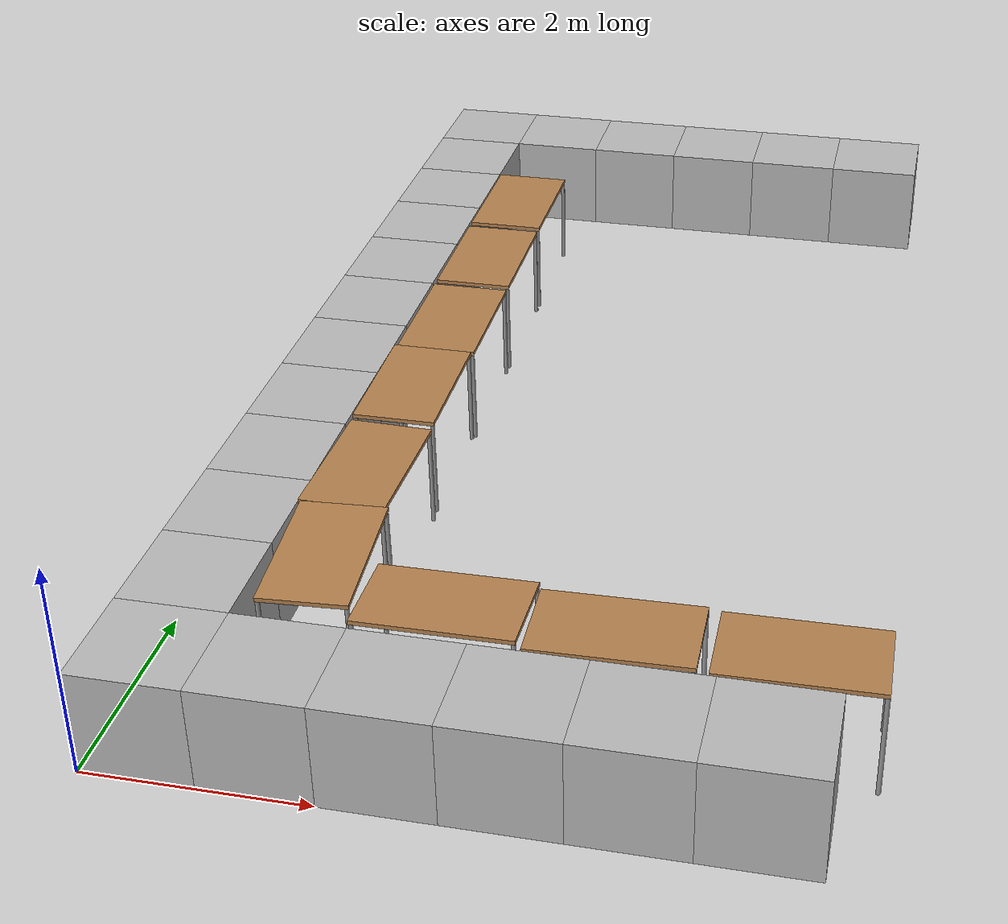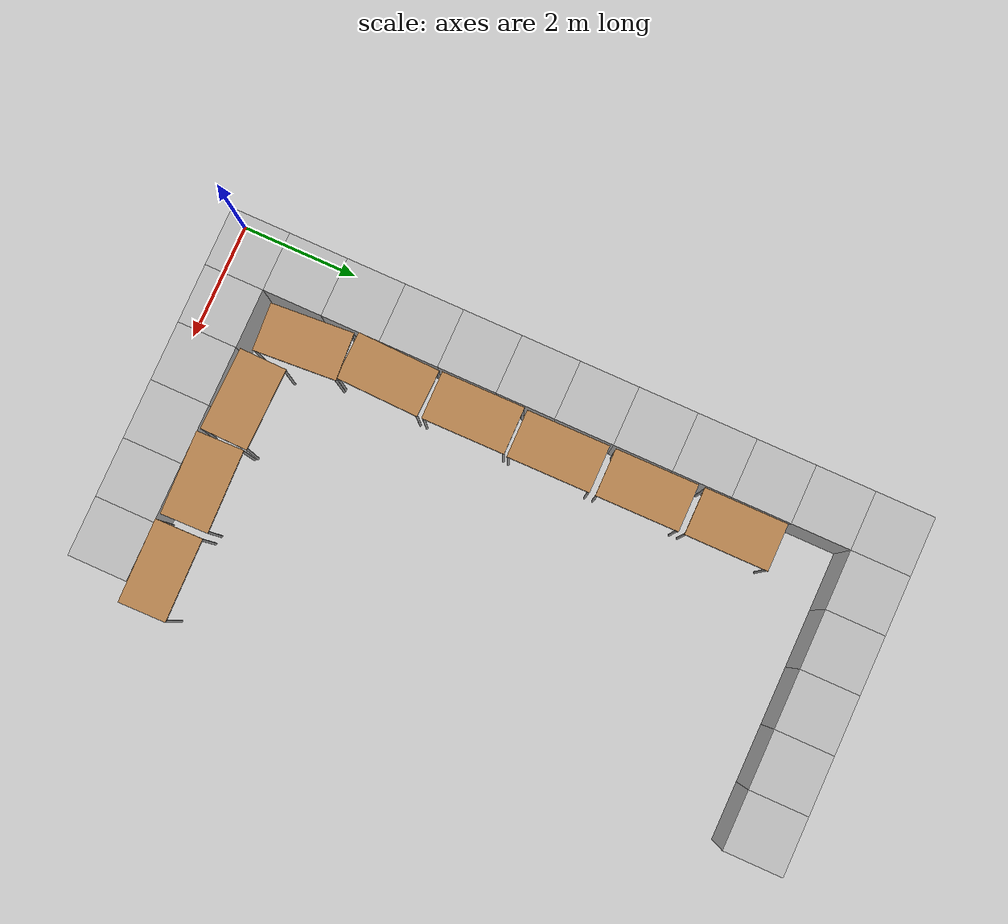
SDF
<sdf version="1.6">
 <world name="default">
  <model name="box_0_0">
   <pose>0.5 0.5 0.5 0 -0 0</pose>
   <static>1</static>
   <link name="link">
    <collision name="collision"><geometry><box><size>1 1 1</size></box></geometry></collision>
    <visual name="visual"><geometry><box><size>1 1 1</size></box></geometry></visual>
   </link>
  </model>
  <model name="box_0_1">
   <pose>0.5 1.5 0.5 0 -0 0</pose>
   <static>1</static>
   <link name="link">
    <collision name="collision"><geometry><box><size>1 1 1</size></box></geometry></collision>
    <visual name="visual"><geometry><box><size>1 1 1</size></box></geometry></visual>
   </link>
  </model>
  <model name="box_0_2">
   <pose>0.5 2.5 0.5 0 -0 0</pose>
   <static>1</static>
   <link name="link">
    <collision name="collision"><geometry><box><size>1 1 1</size></box></geometry></collision>
    <visual name="visual"><geometry><box><size>1 1 1</size></box></geometry></visual>
   </link>
  </model>
  <model name="box_0_3">
   <pose>0.5 3.5 0.5 0 -0 0</pose>
   <static>1</static>
   <link name="link">
    <collision name="collision"><geometry><box><size>1 1 1</size></box></geometry></collision>
    <visual name="visual"><geometry><box><size>1 1 1</size></box></geometry></visual>
   </link>
  </model>
  <model name="box_0_4">
   <pose>0.5 4.5 0.5 0 -0 0</pose>
   <static>1</static>
   <link name="link">
    <collision name="collision"><geometry><box><size>1 1 1</size></box></geometry></collision>
    <visual name="visual"><geometry><box><size>1 1 1</size></box></geometry></visual>
   </link>
  </model>
  <model name="box_0_5">
   <pose>0.5 5.5 0.5 0 -0 0</pose>
   <static>1</static>
   <link name="link">
    <collision name="collision"><geometry><box><size>1 1 1</size></box></geometry></collision>
    <visual name="visual"><geometry><box><size>1 1 1</size></box></geometry></visual>
   </link>
  </model>
  <model name="box_0_6">
   <pose>0.5 6.5 0.5 0 -0 0</pose>
   <static>1</static>
   <link name="link">
    <collision name="collision"><geometry><box><size>1 1 1</size></box></geometry></collision>
    <visual name="visual"><geometry><box><size>1 1 1</size></box></geometry></visual>
   </link>
  </model>
  <model name="box_0_7">
   <pose>0.5 7.5 0.5 0 -0 0</pose>
   <static>1</static>
   <link name="link">
    <collision name="collision"><geometry><box><size>1 1 1</size></box></geometry></collision>
    <visual name="visual"><geometry><box><size>1 1 1</size></box></geometry></visual>
   </link>
  </model>
  <model name="box_0_8">
   <pose>0.5 8.5 0.5 0 -0 0</pose>
   <static>1</static>
   <link name="link">
    <collision name="collision"><geometry><box><size>1 1 1</size></box></geometry></collision>
    <visual name="visual"><geometry><box><size>1 1 1</size></box></geometry></visual>
   </link>
  </model>
  <model name="box_0_9">
   <pose>0.5 9.5 0.5 0 -0 0</pose>
   <static>1</static>
   <link name="link">
    <collision name="collision"><geometry><box><size>1 1 1</size></box></geometry></collision>
    <visual name="visual"><geometry><box><size>1 1 1</size></box></geometry></visual>
   </link>
  </model>
  <model name="box_0_10">
   <pose>0.5 10.5 0.5 0 -0 0</pose>
   <static>1</static>
   <link name="link">
    <collision name="collision"><geometry><box><size>1 1 1</size></box></geometry></collision>
    <visual name="visual"><geometry><box><size>1 1 1</size></box></geometry></visual>
   </link>
  </model>
  <model name="box_0_11">
   <pose>0.5 11.5 0.5 0 -0 0</pose>
   <static>1</static>
   <link name="link">
    <collision name="collision"><geometry><box><size>1 1 1</size></box></geometry></collision>
    <visual name="visual"><geometry><box><size>1 1 1</size></box></geometry></visual>
   </link>
  </model>
  <model name="box_1_0">
   <pose>1.5 0.5 0.5 0 -0 0</pose>
   <static>1</static>
   <link name="link">
    <collision name="collision"><geometry><box><size>1 1 1</size></box></geometry></collision>
    <visual name="visual"><geometry><box><size>1 1 1</size></box></geometry></visual>
   </link>
  </model>
  <model name="box_1_11">
   <pose>1.5 11.5 0.5 0 -0 0</pose>
   <static>1</static>
   <link name="link">
    <collision name="collision"><geometry><box><size>1 1 1</size></box></geometry></collision>
    <visual name="visual"><geometry><box><size>1 1 1</size></box></geometry></visual>
   </link>
  </model>
  <model name="box_2_0">
   <pose>2.5 0.5 0.5 0 -0 0</pose>
   <static>1</static>
   <link name="link">
    <collision name="collision"><geometry><box><size>1 1 1</size></box></geometry></collision>
    <visual name="visual"><geometry><box><size>1 1 1</size></box></geometry></visual>
   </link>
  </model>
  <model name="box_2_11">
   <pose>2.5 11.5 0.5 0 -0 0</pose>
   <static>1</static>
   <link name="link">
    <collision name="collision"><geometry><box><size>1 1 1</size></box></geometry></collision>
    <visual name="visual"><geometry><box><size>1 1 1</size></box></geometry></visual>
   </link>
  </model>
  <model name="box_3_0">
   <pose>3.5 0.5 0.5 0 -0 0</pose>
   <static>1</static>
   <link name="link">
    <collision name="collision"><geometry><box><size>1 1 1</size></box></geometry></collision>
    <visual name="visual"><geometry><box><size>1 1 1</size></box></geometry></visual>
   </link>
  </model>
  <model name="box_3_11">
   <pose>3.5 11.5 0.5 0 -0 0</pose>
   <static>1</static>
   <link name="link">
    <collision name="collision"><geometry><box><size>1 1 1</size></box></geometry></collision>
    <visual name="visual"><geometry><box><size>1 1 1</size></box></geometry></visual>
   </link>
  </model>
  <model name="box_4_0">
   <pose>4.5 0.5 0.5 0 -0 0</pose>
   <static>1</static>
   <link name="link">
    <collision name="collision"><geometry><box><size>1 1 1</size></box></geometry></collision>
    <visual name="visual"><geometry><box><size>1 1 1</size></box></geometry></visual>
   </link>
  </model>
  <model name="box_4_11">
   <pose>4.5 11.5 0.5 0 -0 0</pose>
   <static>1</static>
   <link name="link">
    <collision name="collision"><geometry><box><size>1 1 1</size></box></geometry></collision>
    <visual name="visual"><geometry><box><size>1 1 1</size></box></geometry></visual>
   </link>
  </model>
  <model name="box_5_0">
   <pose>5.5 0.5 0.5 0 -0 0</pose>
   <static>1</static>
   <link name="link">
    <collision name="collision"><geometry><box><size>1 1 1</size></box></geometry></collision>
    <visual name="visual"><geometry><box><size>1 1 1</size></box></geometry></visual>
   </link>
  </model>
  <model name="box_5_11">
   <pose>5.5 11.5 0.5 0 -0 0</pose>
   <static>1</static>
   <link name="link">
    <collision name="collision"><geometry><box><size>1 1 1</size></box></geometry></collision>
    <visual name="visual"><geometry><box><size>1 1 1</size></box></geometry></visual>
   </link>
  </model>
  <model name="table_0_clone_clone_1">
   <static>0</static>
   <link name="link">
    <collision name="surface">
     <pose>0 0 1 0 -0 0</pose>
     <geometry><box><size>1.5 0.8 0.03</size></box></geometry>
     <surface><friction><ode><mu>0.6</mu><mu2>0.6</mu2></ode></friction></surface>
    </collision>
    <visual name="visual1">
     <pose>0 0 1 0 -0 0</pose>
     <geometry><box><size>1.4 0.8 0.04</size></box></geometry>
     <material>
      <script><uri>file://media/materials/scripts/gazebo.material</uri><name>Gazebo/Wood</name></script>
     </material>
    </visual>
    <collision name="front_left_leg">
     <pose>0.68 0.38 0.5 0 -0 0</pose>
     <geometry><cylinder><radius>0.02</radius><length>1</length></cylinder></geometry>
    </collision>
    <visual name="front_left_leg">
     <pose>0.68 0.38 0.5 0 -0 0</pose>
     <geometry><cylinder><radius>0.02</radius><length>1</length></cylinder></geometry>
     <material>
      <script><uri>file://media/materials/scripts/gazebo.material</uri><name>Gazebo/Grey</name></script>
     </material>
    </visual>
    <collision name="front_right_leg">
     <pose>0.68 -0.38 0.5 0 -0 0</pose>
     <geometry><cylinder><radius>0.02</radius><length>1</length></cylinder></geometry>
    </collision>
    <visual name="front_right_leg">
     <pose>0.68 -0.38 0.5 0 -0 0</pose>
     <geometry><cylinder><radius>0.02</radius><length>1</length></cylinder></geometry>
     <material>
      <script><uri>file://media/materials/scripts/gazebo.material</uri><name>Gazebo/Grey</name></script>
     </material>
    </visual>
    <collision name="back_right_leg">
     <pose>-0.68 -0.38 0.5 0 -0 0</pose>
     <geometry><cylinder><radius>0.02</radius><length>1</length></cylinder></geometry>
    </collision>
    <visual name="back_right_leg">
     <pose>-0.68 -0.38 0.5 0 -0 0</pose>
     <geometry><cylinder><radius>0.02</radius><length>1</length></cylinder></geometry>
     <material>
      <script><uri>file://media/materials/scripts/gazebo.material</uri><name>Gazebo/Grey</name></script>
     </material>
    </visual>
    <collision name="back_left_leg">
     <pose>-0.68 0.38 0.5 0 -0 0</pose>
     <geometry><cylinder><radius>0.02</radius><length>1</length></cylinder></geometry>
    </collision>
    <visual name="back_left_leg">
     <pose>-0.68 0.38 0.5 0 -0 0</pose>
     <geometry><cylinder><radius>0.02</radius><length>1</length></cylinder></geometry>
     <material>
      <script><uri>file://media/materials/scripts/gazebo.material</uri><name>Gazebo/Grey</name></script>
     </material>
    </visual>
    <inertial>
     <inertia><ixx>1</ixx><ixy>0</ixy><ixz>0</ixz><iyy>1</iyy><iyz>0</iyz><izz>1</izz></inertia>
     <mass>1</mass>
    </inertial>
   </link>
   <pose>1.49104 1.95107 0.015851 0.001984 0.021592 -1.5073</pose>
  </model>
  <model name="table_0_clone_clone_2">
   <static>0</static>
   <link name="link">
    <collision name="surface">
     <pose>0 0 1 0 -0 0</pose>
     <geometry><box><size>1.5 0.8 0.03</size></box></geometry>
     <surface><friction><ode><mu>0.6</mu><mu2>0.6</mu2></ode></friction></surface>
    </collision>
    <visual name="visual1">
     <pose>0 0 1 0 -0 0</pose>
     <geometry><box><size>1.4 0.8 0.04</size></box></geometry>
     <material>
      <script><uri>file://media/materials/scripts/gazebo.material</uri><name>Gazebo/Wood</name></script>
     </material>
    </visual>
    <collision name="front_left_leg">
     <pose>0.68 0.38 0.5 0 -0 0</pose>
     <geometry><cylinder><radius>0.02</radius><length>1</length></cylinder></geometry>
    </collision>
    <visual name="front_left_leg">
     <pose>0.68 0.38 0.5 0 -0 0</pose>
     <geometry><cylinder><radius>0.02</radius><length>1</length></cylinder></geometry>
     <material>
      <script><uri>file://media/materials/scripts/gazebo.material</uri><name>Gazebo/Grey</name></script>
     </material>
    </visual>
    <collision name="front_right_leg">
     <pose>0.68 -0.38 0.5 0 -0 0</pose>
     <geometry><cylinder><radius>0.02</radius><length>1</length></cylinder></geometry>
    </collision>
    <visual name="front_right_leg">
     <pose>0.68 -0.38 0.5 0 -0 0</pose>
     <geometry><cylinder><radius>0.02</radius><length>1</length></cylinder></geometry>
     <material>
      <script><uri>file://media/materials/scripts/gazebo.material</uri><name>Gazebo/Grey</name></script>
     </material>
    </visual>
    <collision name="back_right_leg">
     <pose>-0.68 -0.38 0.5 0 -0 0</pose>
     <geometry><cylinder><radius>0.02</radius><length>1</length></cylinder></geometry>
    </collision>
    <visual name="back_right_leg">
     <pose>-0.68 -0.38 0.5 0 -0 0</pose>
     <geometry><cylinder><radius>0.02</radius><length>1</length></cylinder></geometry>
     <material>
      <script><uri>file://media/materials/scripts/gazebo.material</uri><name>Gazebo/Grey</name></script>
     </material>
    </visual>
    <collision name="back_left_leg">
     <pose>-0.68 0.38 0.5 0 -0 0</pose>
     <geometry><cylinder><radius>0.02</radius><length>1</length></cylinder></geometry>
    </collision>
    <visual name="back_left_leg">
     <pose>-0.68 0.38 0.5 0 -0 0</pose>
     <geometry><cylinder><radius>0.02</radius><length>1</length></cylinder></geometry>
     <material>
      <script><uri>file://media/materials/scripts/gazebo.material</uri><name>Gazebo/Grey</name></script>
     </material>
    </visual>
    <inertial>
     <inertia><ixx>1</ixx><ixy>0</ixy><ixz>0</ixz><iyy>1</iyy><iyz>0</iyz><izz>1</izz></inertia>
     <mass>1</mass>
    </inertial>
   </link>
   <pose>1.42148 3.34486 0 0 0 -1.59966</pose>
  </model>
  <model name="table_0_clone_clone_2_clone">
   <static>0</static>
   <link name="link">
    <collision name="surface">
     <pose>0 0 1 0 -0 0</pose>
     <geometry><box><size>1.5 0.8 0.03</size></box></geometry>
     <surface><friction><ode><mu>0.6</mu><mu2>0.6</mu2></ode></friction></surface>
    </collision>
    <visual name="visual1">
     <pose>0 0 1 0 -0 0</pose>
     <geometry><box><size>1.4 0.8 0.04</size></box></geometry>
     <material>
      <script><uri>file://media/materials/scripts/gazebo.material</uri><name>Gazebo/Wood</name></script>
     </material>
    </visual>
    <collision name="front_left_leg">
     <pose>0.68 0.38 0.5 0 -0 0</pose>
     <geometry><cylinder><radius>0.02</radius><length>1</length></cylinder></geometry>
    </collision>
    <visual name="front_left_leg">
     <pose>0.68 0.38 0.5 0 -0 0</pose>
     <geometry><cylinder><radius>0.02</radius><length>1</length></cylinder></geometry>
     <material>
      <script><uri>file://media/materials/scripts/gazebo.material</uri><name>Gazebo/Grey</name></script>
     </material>
    </visual>
    <collision name="front_right_leg">
     <pose>0.68 -0.38 0.5 0 -0 0</pose>
     <geometry><cylinder><radius>0.02</radius><length>1</length></cylinder></geometry>
    </collision>
    <visual name="front_right_leg">
     <pose>0.68 -0.38 0.5 0 -0 0</pose>
     <geometry><cylinder><radius>0.02</radius><length>1</length></cylinder></geometry>
     <material>
      <script><uri>file://media/materials/scripts/gazebo.material</uri><name>Gazebo/Grey</name></script>
     </material>
    </visual>
    <collision name="back_right_leg">
     <pose>-0.68 -0.38 0.5 0 -0 0</pose>
     <geometry><cylinder><radius>0.02</radius><length>1</length></cylinder></geometry>
    </collision>
    <visual name="back_right_leg">
     <pose>-0.68 -0.38 0.5 0 -0 0</pose>
     <geometry><cylinder><radius>0.02</radius><length>1</length></cylinder></geometry>
     <material>
      <script><uri>file://media/materials/scripts/gazebo.material</uri><name>Gazebo/Grey</name></script>
     </material>
    </visual>
    <collision name="back_left_leg">
     <pose>-0.68 0.38 0.5 0 -0 0</pose>
     <geometry><cylinder><radius>0.02</radius><length>1</length></cylinder></geometry>
    </collision>
    <visual name="back_left_leg">
     <pose>-0.68 0.38 0.5 0 -0 0</pose>
     <geometry><cylinder><radius>0.02</radius><length>1</length></cylinder></geometry>
     <material>
      <script><uri>file://media/materials/scripts/gazebo.material</uri><name>Gazebo/Grey</name></script>
     </material>
    </visual>
    <inertial>
     <inertia><ixx>1</ixx><ixy>0</ixy><ixz>0</ixz><iyy>1</iyy><iyz>0</iyz><izz>1</izz></inertia>
     <mass>1</mass>
    </inertial>
   </link>
   <pose>1.43565 4.80793 0.03001 -5e-06 1.1e-05 -1.56485</pose>
  </model>
  <model name="table_0_clone_clone_2_clone_0">
   <static>0</static>
   <link name="link">
    <collision name="surface">
     <pose>0 0 1 0 -0 0</pose>
     <geometry><box><size>1.5 0.8 0.03</size></box></geometry>
     <surface><friction><ode><mu>0.6</mu><mu2>0.6</mu2></ode></friction></surface>
    </collision>
    <visual name="visual1">
     <pose>0 0 1 0 -0 0</pose>
     <geometry><box><size>1.4 0.8 0.04</size></box></geometry>
     <material>
      <script><uri>file://media/materials/scripts/gazebo.material</uri><name>Gazebo/Wood</name></script>
     </material>
    </visual>
    <collision name="front_left_leg">
     <pose>0.68 0.38 0.5 0 -0 0</pose>
     <geometry><cylinder><radius>0.02</radius><length>1</length></cylinder></geometry>
    </collision>
    <visual name="front_left_leg">
     <pose>0.68 0.38 0.5 0 -0 0</pose>
     <geometry><cylinder><radius>0.02</radius><length>1</length></cylinder></geometry>
     <material>
      <script><uri>file://media/materials/scripts/gazebo.material</uri><name>Gazebo/Grey</name></script>
     </material>
    </visual>
    <collision name="front_right_leg">
     <pose>0.68 -0.38 0.5 0 -0 0</pose>
     <geometry><cylinder><radius>0.02</radius><length>1</length></cylinder></geometry>
    </collision>
    <visual name="front_right_leg">
     <pose>0.68 -0.38 0.5 0 -0 0</pose>
     <geometry><cylinder><radius>0.02</radius><length>1</length></cylinder></geometry>
     <material>
      <script><uri>file://media/materials/scripts/gazebo.material</uri><name>Gazebo/Grey</name></script>
     </material>
    </visual>
    <collision name="back_right_leg">
     <pose>-0.68 -0.38 0.5 0 -0 0</pose>
     <geometry><cylinder><radius>0.02</radius><length>1</length></cylinder></geometry>
    </collision>
    <visual name="back_right_leg">
     <pose>-0.68 -0.38 0.5 0 -0 0</pose>
     <geometry><cylinder><radius>0.02</radius><length>1</length></cylinder></geometry>
     <material>
      <script><uri>file://media/materials/scripts/gazebo.material</uri><name>Gazebo/Grey</name></script>
     </material>
    </visual>
    <collision name="back_left_leg">
     <pose>-0.68 0.38 0.5 0 -0 0</pose>
     <geometry><cylinder><radius>0.02</radius><length>1</length></cylinder></geometry>
    </collision>
    <visual name="back_left_leg">
     <pose>-0.68 0.38 0.5 0 -0 0</pose>
     <geometry><cylinder><radius>0.02</radius><length>1</length></cylinder></geometry>
     <material>
      <script><uri>file://media/materials/scripts/gazebo.material</uri><name>Gazebo/Grey</name></script>
     </material>
    </visual>
    <inertial>
     <inertia><ixx>1</ixx><ixy>0</ixy><ixz>0</ixz><iyy>1</iyy><iyz>0</iyz><izz>1</izz></inertia>
     <mass>1</mass>
    </inertial>
   </link>
   <pose>1.44106 6.25814 -3e-06 0 4e-06 -1.56446</pose>
  </model>
  <model name="table_0_clone_clone_2_clone_1">
   <static>0</static>
   <link name="link">
    <collision name="surface">
     <pose>0 0 1 0 -0 0</pose>
     <geometry><box><size>1.5 0.8 0.03</size></box></geometry>
     <surface><friction><ode><mu>0.6</mu><mu2>0.6</mu2></ode></friction></surface>
    </collision>
    <visual name="visual1">
     <pose>0 0 1 0 -0 0</pose>
     <geometry><box><size>1.4 0.8 0.04</size></box></geometry>
     <material>
      <script><uri>file://media/materials/scripts/gazebo.material</uri><name>Gazebo/Wood</name></script>
     </material>
    </visual>
    <collision name="front_left_leg">
     <pose>0.68 0.38 0.5 0 -0 0</pose>
     <geometry><cylinder><radius>0.02</radius><length>1</length></cylinder></geometry>
    </collision>
    <visual name="front_left_leg">
     <pose>0.68 0.38 0.5 0 -0 0</pose>
     <geometry><cylinder><radius>0.02</radius><length>1</length></cylinder></geometry>
     <material>
      <script><uri>file://media/materials/scripts/gazebo.material</uri><name>Gazebo/Grey</name></script>
     </material>
    </visual>
    <collision name="front_right_leg">
     <pose>0.68 -0.38 0.5 0 -0 0</pose>
     <geometry><cylinder><radius>0.02</radius><length>1</length></cylinder></geometry>
    </collision>
    <visual name="front_right_leg">
     <pose>0.68 -0.38 0.5 0 -0 0</pose>
     <geometry><cylinder><radius>0.02</radius><length>1</length></cylinder></geometry>
     <material>
      <script><uri>file://media/materials/scripts/gazebo.material</uri><name>Gazebo/Grey</name></script>
     </material>
    </visual>
    <collision name="back_right_leg">
     <pose>-0.68 -0.38 0.5 0 -0 0</pose>
     <geometry><cylinder><radius>0.02</radius><length>1</length></cylinder></geometry>
    </collision>
    <visual name="back_right_leg">
     <pose>-0.68 -0.38 0.5 0 -0 0</pose>
     <geometry><cylinder><radius>0.02</radius><length>1</length></cylinder></geometry>
     <material>
      <script><uri>file://media/materials/scripts/gazebo.material</uri><name>Gazebo/Grey</name></script>
     </material>
    </visual>
    <collision name="back_left_leg">
     <pose>-0.68 0.38 0.5 0 -0 0</pose>
     <geometry><cylinder><radius>0.02</radius><length>1</length></cylinder></geometry>
    </collision>
    <visual name="back_left_leg">
     <pose>-0.68 0.38 0.5 0 -0 0</pose>
     <geometry><cylinder><radius>0.02</radius><length>1</length></cylinder></geometry>
     <material>
      <script><uri>file://media/materials/scripts/gazebo.material</uri><name>Gazebo/Grey</name></script>
     </material>
    </visual>
    <inertial>
     <inertia><ixx>1</ixx><ixy>0</ixy><ixz>0</ixz><iyy>1</iyy><iyz>0</iyz><izz>1</izz></inertia>
     <mass>1</mass>
    </inertial>
   </link>
   <pose>1.43309 7.75812 -0.000574 -1e-06 -0 -1.56446</pose>
  </model>
  <model name="table_0_clone_clone_2_clone_1_clone">
   <static>0</static>
   <link name="link">
    <collision name="surface">
     <pose>0 0 1 0 -0 0</pose>
     <geometry><box><size>1.5 0.8 0.03</size></box></geometry>
     <surface><friction><ode><mu>0.6</mu><mu2>0.6</mu2></ode></friction></surface>
    </collision>
    <visual name="visual1">
     <pose>0 0 1 0 -0 0</pose>
     <geometry><box><size>1.4 0.8 0.04</size></box></geometry>
     <material>
      <script><uri>file://media/materials/scripts/gazebo.material</uri><name>Gazebo/Wood</name></script>
     </material>
    </visual>
    <collision name="front_left_leg">
     <pose>0.68 0.38 0.5 0 -0 0</pose>
     <geometry><cylinder><radius>0.02</radius><length>1</length></cylinder></geometry>
    </collision>
    <visual name="front_left_leg">
     <pose>0.68 0.38 0.5 0 -0 0</pose>
     <geometry><cylinder><radius>0.02</radius><length>1</length></cylinder></geometry>
     <material>
      <script><uri>file://media/materials/scripts/gazebo.material</uri><name>Gazebo/Grey</name></script>
     </material>
    </visual>
    <collision name="front_right_leg">
     <pose>0.68 -0.38 0.5 0 -0 0</pose>
     <geometry><cylinder><radius>0.02</radius><length>1</length></cylinder></geometry>
    </collision>
    <visual name="front_right_leg">
     <pose>0.68 -0.38 0.5 0 -0 0</pose>
     <geometry><cylinder><radius>0.02</radius><length>1</length></cylinder></geometry>
     <material>
      <script><uri>file://media/materials/scripts/gazebo.material</uri><name>Gazebo/Grey</name></script>
     </material>
    </visual>
    <collision name="back_right_leg">
     <pose>-0.68 -0.38 0.5 0 -0 0</pose>
     <geometry><cylinder><radius>0.02</radius><length>1</length></cylinder></geometry>
    </collision>
    <visual name="back_right_leg">
     <pose>-0.68 -0.38 0.5 0 -0 0</pose>
     <geometry><cylinder><radius>0.02</radius><length>1</length></cylinder></geometry>
     <material>
      <script><uri>file://media/materials/scripts/gazebo.material</uri><name>Gazebo/Grey</name></script>
     </material>
    </visual>
    <collision name="back_left_leg">
     <pose>-0.68 0.38 0.5 0 -0 0</pose>
     <geometry><cylinder><radius>0.02</radius><length>1</length></cylinder></geometry>
    </collision>
    <visual name="back_left_leg">
     <pose>-0.68 0.38 0.5 0 -0 0</pose>
     <geometry><cylinder><radius>0.02</radius><length>1</length></cylinder></geometry>
     <material>
      <script><uri>file://media/materials/scripts/gazebo.material</uri><name>Gazebo/Grey</name></script>
     </material>
    </visual>
    <inertial>
     <inertia><ixx>1</ixx><ixy>0</ixy><ixz>0</ixz><iyy>1</iyy><iyz>0</iyz><izz>1</izz></inertia>
     <mass>1</mass>
    </inertial>
   </link>
   <pose>1.42688 9.25998 -6e-06 -0 1e-06 -1.56917</pose>
  </model>
  <model name="table_clone_0_clone_clone">
   <static>0</static>
   <link name="link">
    <collision name="surface">
     <pose>0 0 1 0 -0 0</pose>
     <geometry><box><size>1.5 0.8 0.03</size></box></geometry>
     <surface><friction><ode><mu>0.6</mu><mu2>0.6</mu2></ode></friction></surface>
    </collision>
    <visual name="visual1">
     <pose>0 0 1 0 -0 0</pose>
     <geometry><box><size>1.4 0.8 0.04</size></box></geometry>
     <material>
      <script><uri>file://media/materials/scripts/gazebo.material</uri><name>Gazebo/Wood</name></script>
     </material>
    </visual>
    <collision name="front_left_leg">
     <pose>0.68 0.38 0.5 0 -0 0</pose>
     <geometry><cylinder><radius>0.02</radius><length>1</length></cylinder></geometry>
    </collision>
    <visual name="front_left_leg">
     <pose>0.68 0.38 0.5 0 -0 0</pose>
     <geometry><cylinder><radius>0.02</radius><length>1</length></cylinder></geometry>
     <material>
      <script><uri>file://media/materials/scripts/gazebo.material</uri><name>Gazebo/Grey</name></script>
     </material>
    </visual>
    <collision name="front_right_leg">
     <pose>0.68 -0.38 0.5 0 -0 0</pose>
     <geometry><cylinder><radius>0.02</radius><length>1</length></cylinder></geometry>
    </collision>
    <visual name="front_right_leg">
     <pose>0.68 -0.38 0.5 0 -0 0</pose>
     <geometry><cylinder><radius>0.02</radius><length>1</length></cylinder></geometry>
     <material>
      <script><uri>file://media/materials/scripts/gazebo.material</uri><name>Gazebo/Grey</name></script>
     </material>
    </visual>
    <collision name="back_right_leg">
     <pose>-0.68 -0.38 0.5 0 -0 0</pose>
     <geometry><cylinder><radius>0.02</radius><length>1</length></cylinder></geometry>
    </collision>
    <visual name="back_right_leg">
     <pose>-0.68 -0.38 0.5 0 -0 0</pose>
     <geometry><cylinder><radius>0.02</radius><length>1</length></cylinder></geometry>
     <material>
      <script><uri>file://media/materials/scripts/gazebo.material</uri><name>Gazebo/Grey</name></script>
     </material>
    </visual>
    <collision name="back_left_leg">
     <pose>-0.68 0.38 0.5 0 -0 0</pose>
     <geometry><cylinder><radius>0.02</radius><length>1</length></cylinder></geometry>
    </collision>
    <visual name="back_left_leg">
     <pose>-0.68 0.38 0.5 0 -0 0</pose>
     <geometry><cylinder><radius>0.02</radius><length>1</length></cylinder></geometry>
     <material>
      <script><uri>file://media/materials/scripts/gazebo.material</uri><name>Gazebo/Grey</name></script>
     </material>
    </visual>
    <inertial>
     <inertia><ixx>1</ixx><ixy>0</ixy><ixz>0</ixz><iyy>1</iyy><iyz>0</iyz><izz>1</izz></inertia>
     <mass>1</mass>
    </inertial>
   </link>
   <pose>2.71404 1.45698 0.015448 -2e-06 -0.022078 -0.017946</pose>
  </model>
  <model name="table_clone_0_clone_clone_0">
   <static>0</static>
   <link name="link">
    <collision name="surface">
     <pose>0 0 1 0 -0 0</pose>
     <geometry><box><size>1.5 0.8 0.03</size></box></geometry>
     <surface><friction><ode><mu>0.6</mu><mu2>0.6</mu2></ode></friction></surface>
    </collision>
    <visual name="visual1">
     <pose>0 0 1 0 -0 0</pose>
     <geometry><box><size>1.4 0.8 0.04</size></box></geometry>
     <material>
      <script><uri>file://media/materials/scripts/gazebo.material</uri><name>Gazebo/Wood</name></script>
     </material>
    </visual>
    <collision name="front_left_leg">
     <pose>0.68 0.38 0.5 0 -0 0</pose>
     <geometry><cylinder><radius>0.02</radius><length>1</length></cylinder></geometry>
    </collision>
    <visual name="front_left_leg">
     <pose>0.68 0.38 0.5 0 -0 0</pose>
     <geometry><cylinder><radius>0.02</radius><length>1</length></cylinder></geometry>
     <material>
      <script><uri>file://media/materials/scripts/gazebo.material</uri><name>Gazebo/Grey</name></script>
     </material>
    </visual>
    <collision name="front_right_leg">
     <pose>0.68 -0.38 0.5 0 -0 0</pose>
     <geometry><cylinder><radius>0.02</radius><length>1</length></cylinder></geometry>
    </collision>
    <visual name="front_right_leg">
     <pose>0.68 -0.38 0.5 0 -0 0</pose>
     <geometry><cylinder><radius>0.02</radius><length>1</length></cylinder></geometry>
     <material>
      <script><uri>file://media/materials/scripts/gazebo.material</uri><name>Gazebo/Grey</name></script>
     </material>
    </visual>
    <collision name="back_right_leg">
     <pose>-0.68 -0.38 0.5 0 -0 0</pose>
     <geometry><cylinder><radius>0.02</radius><length>1</length></cylinder></geometry>
    </collision>
    <visual name="back_right_leg">
     <pose>-0.68 -0.38 0.5 0 -0 0</pose>
     <geometry><cylinder><radius>0.02</radius><length>1</length></cylinder></geometry>
     <material>
      <script><uri>file://media/materials/scripts/gazebo.material</uri><name>Gazebo/Grey</name></script>
     </material>
    </visual>
    <collision name="back_left_leg">
     <pose>-0.68 0.38 0.5 0 -0 0</pose>
     <geometry><cylinder><radius>0.02</radius><length>1</length></cylinder></geometry>
    </collision>
    <visual name="back_left_leg">
     <pose>-0.68 0.38 0.5 0 -0 0</pose>
     <geometry><cylinder><radius>0.02</radius><length>1</length></cylinder></geometry>
     <material>
      <script><uri>file://media/materials/scripts/gazebo.material</uri><name>Gazebo/Grey</name></script>
     </material>
    </visual>
    <inertial>
     <inertia><ixx>1</ixx><ixy>0</ixy><ixz>0</ixz><iyy>1</iyy><iyz>0</iyz><izz>1</izz></inertia>
     <mass>1</mass>
    </inertial>
   </link>
   <pose>4.12747 1.41818 -0.000263 -2.8e-05 -0 0.024436</pose>
  </model>
  <model name="table_clone_0_clone_clone_1">
   <static>0</static>
   <link name="link">
    <collision name="surface">
     <pose>0 0 1 0 -0 0</pose>
     <geometry><box><size>1.5 0.8 0.03</size></box></geometry>
     <surface><friction><ode><mu>0.6</mu><mu2>0.6</mu2></ode></friction></surface>
    </collision>
    <visual name="visual1">
     <pose>0 0 1 0 -0 0</pose>
     <geometry><box><size>1.4 0.8 0.04</size></box></geometry>
     <material>
      <script><uri>file://media/materials/scripts/gazebo.material</uri><name>Gazebo/Wood</name></script>
     </material>
    </visual>
    <collision name="front_left_leg">
     <pose>0.68 0.38 0.5 0 -0 0</pose>
     <geometry><cylinder><radius>0.02</radius><length>1</length></cylinder></geometry>
    </collision>
    <visual name="front_left_leg">
     <pose>0.68 0.38 0.5 0 -0 0</pose>
     <geometry><cylinder><radius>0.02</radius><length>1</length></cylinder></geometry>
     <material>
      <script><uri>file://media/materials/scripts/gazebo.material</uri><name>Gazebo/Grey</name></script>
     </material>
    </visual>
    <collision name="front_right_leg">
     <pose>0.68 -0.38 0.5 0 -0 0</pose>
     <geometry><cylinder><radius>0.02</radius><length>1</length></cylinder></geometry>
    </collision>
    <visual name="front_right_leg">
     <pose>0.68 -0.38 0.5 0 -0 0</pose>
     <geometry><cylinder><radius>0.02</radius><length>1</length></cylinder></geometry>
     <material>
      <script><uri>file://media/materials/scripts/gazebo.material</uri><name>Gazebo/Grey</name></script>
     </material>
    </visual>
    <collision name="back_right_leg">
     <pose>-0.68 -0.38 0.5 0 -0 0</pose>
     <geometry><cylinder><radius>0.02</radius><length>1</length></cylinder></geometry>
    </collision>
    <visual name="back_right_leg">
     <pose>-0.68 -0.38 0.5 0 -0 0</pose>
     <geometry><cylinder><radius>0.02</radius><length>1</length></cylinder></geometry>
     <material>
      <script><uri>file://media/materials/scripts/gazebo.material</uri><name>Gazebo/Grey</name></script>
     </material>
    </visual>
    <collision name="back_left_leg">
     <pose>-0.68 0.38 0.5 0 -0 0</pose>
     <geometry><cylinder><radius>0.02</radius><length>1</length></cylinder></geometry>
    </collision>
    <visual name="back_left_leg">
     <pose>-0.68 0.38 0.5 0 -0 0</pose>
     <geometry><cylinder><radius>0.02</radius><length>1</length></cylinder></geometry>
     <material>
      <script><uri>file://media/materials/scripts/gazebo.material</uri><name>Gazebo/Grey</name></script>
     </material>
    </visual>
    <inertial>
     <inertia><ixx>1</ixx><ixy>0</ixy><ixz>0</ixz><iyy>1</iyy><iyz>0</iyz><izz>1</izz></inertia>
     <mass>1</mass>
    </inertial>
   </link>
   <pose>5.63131 1.41156 -2e-06 -0 -1e-06 0.015481</pose>
  </model>
 </world>
</sdf>
